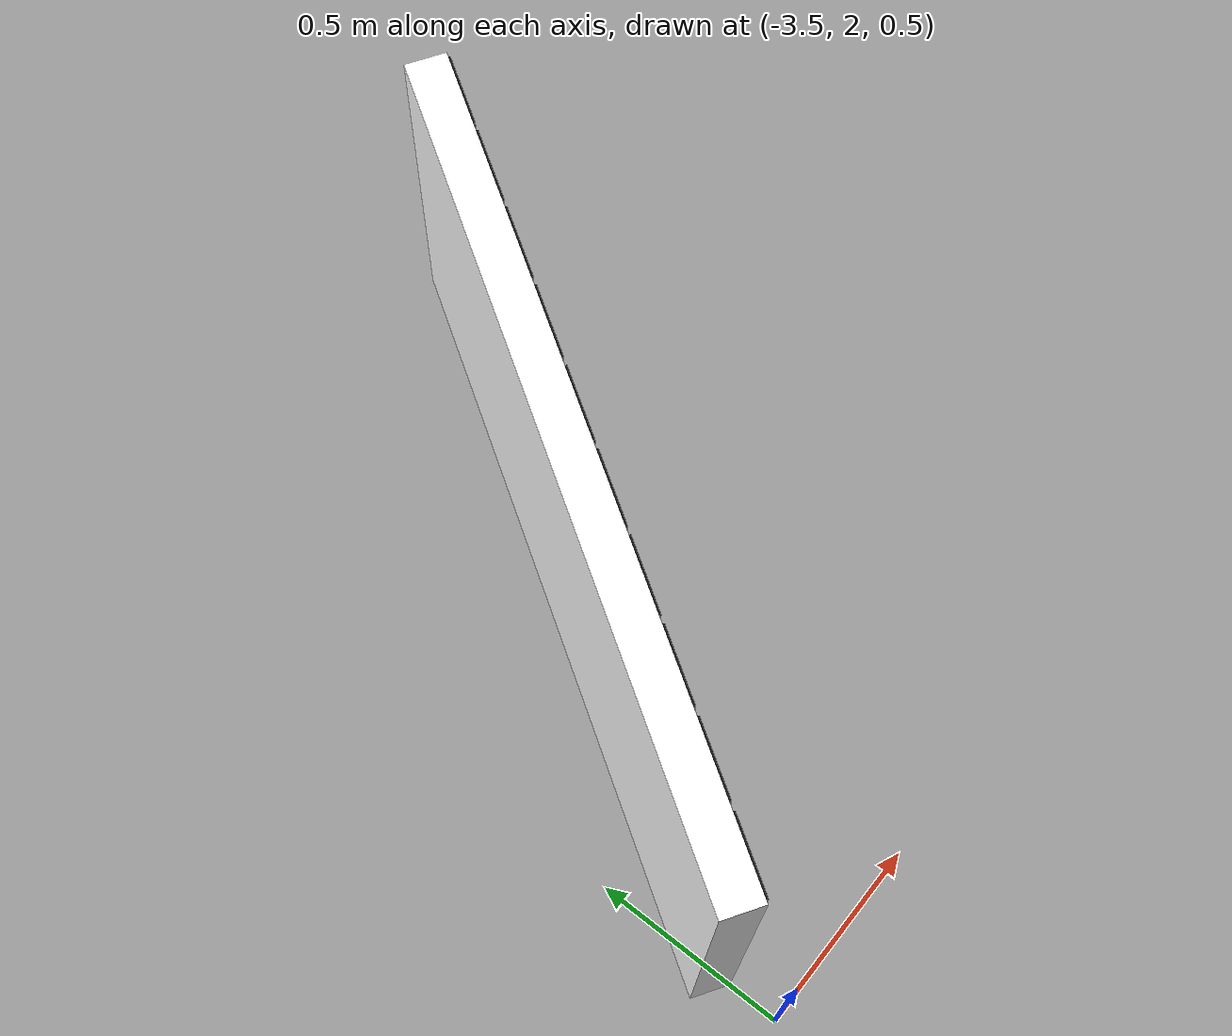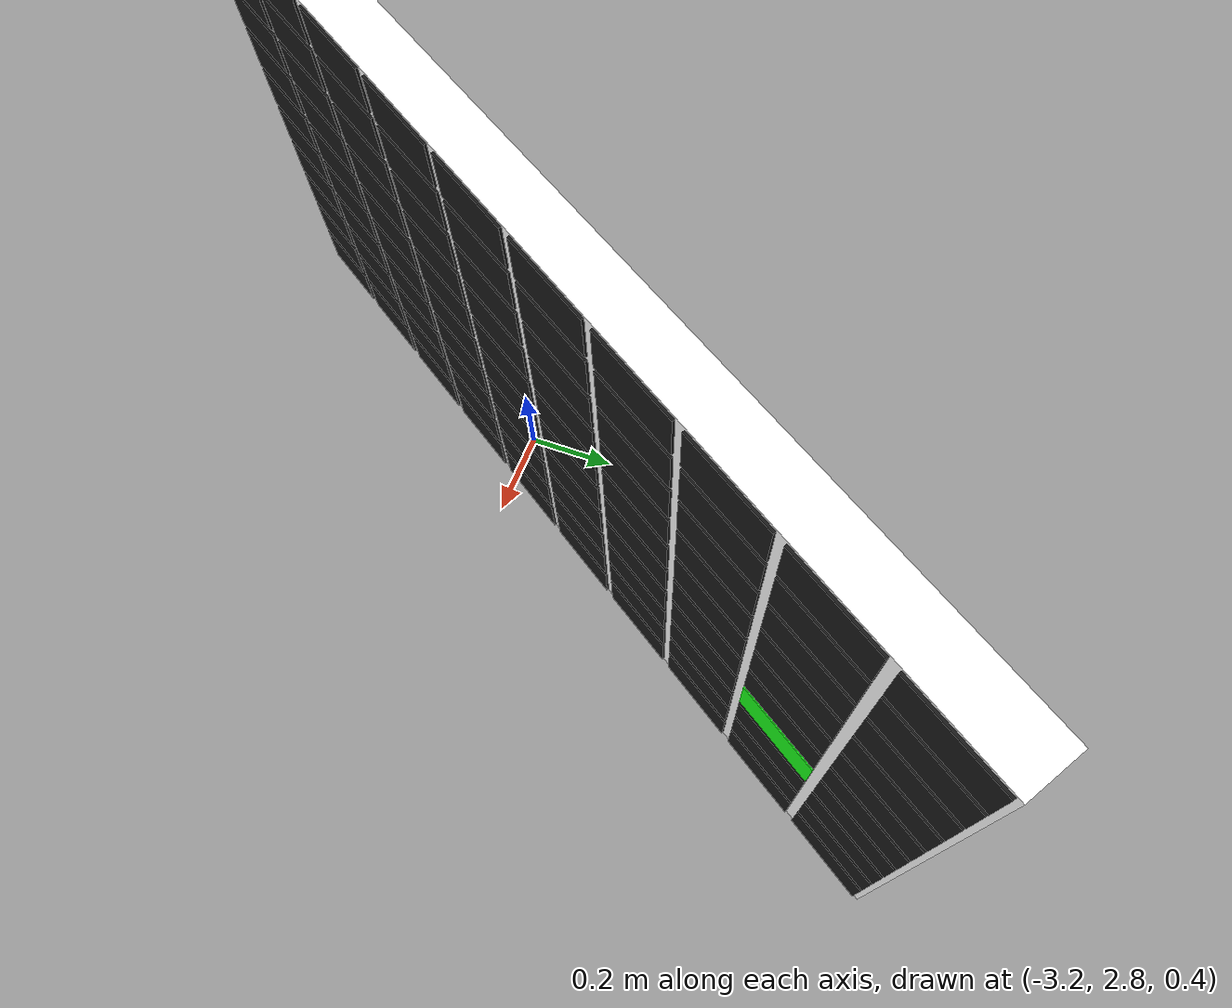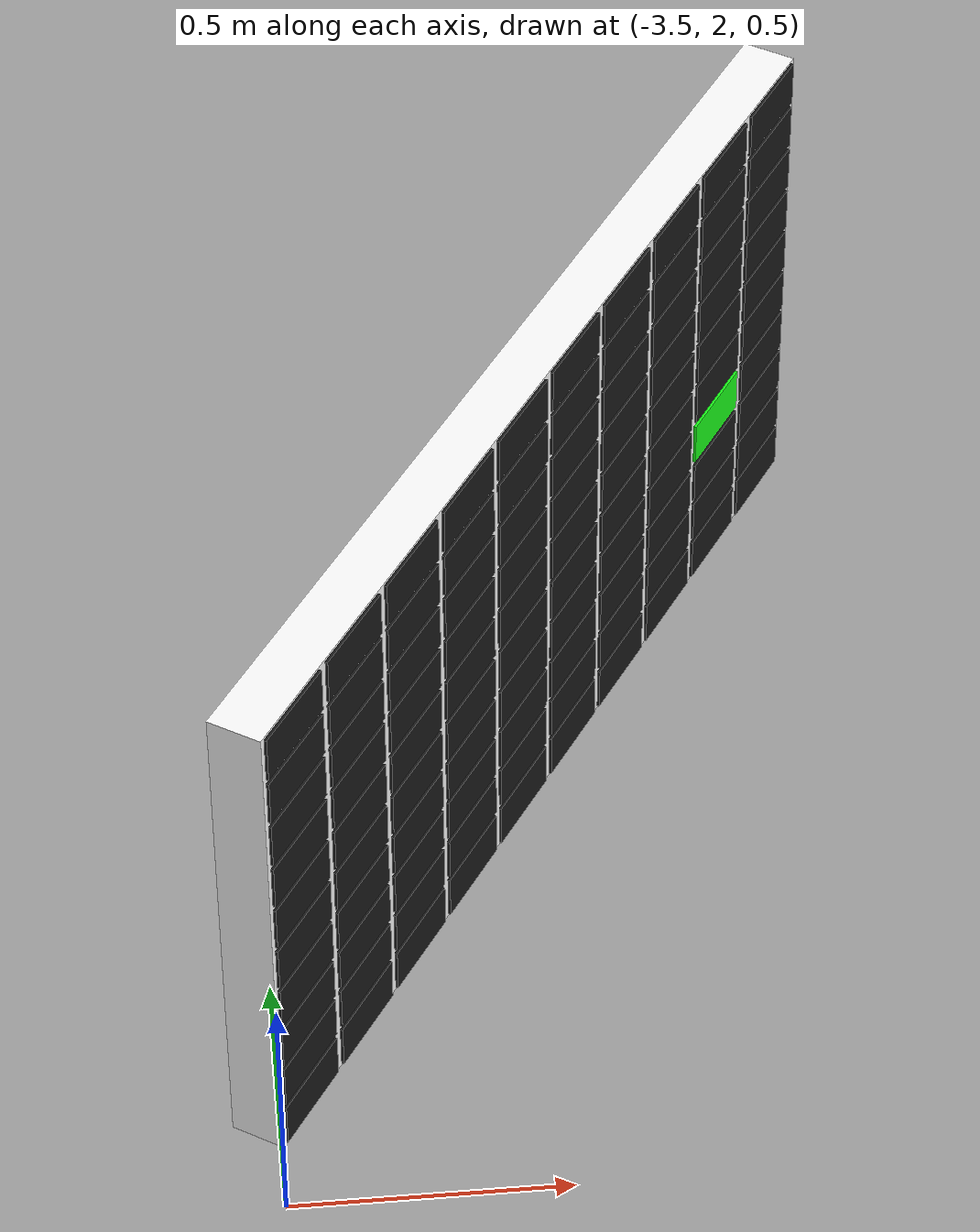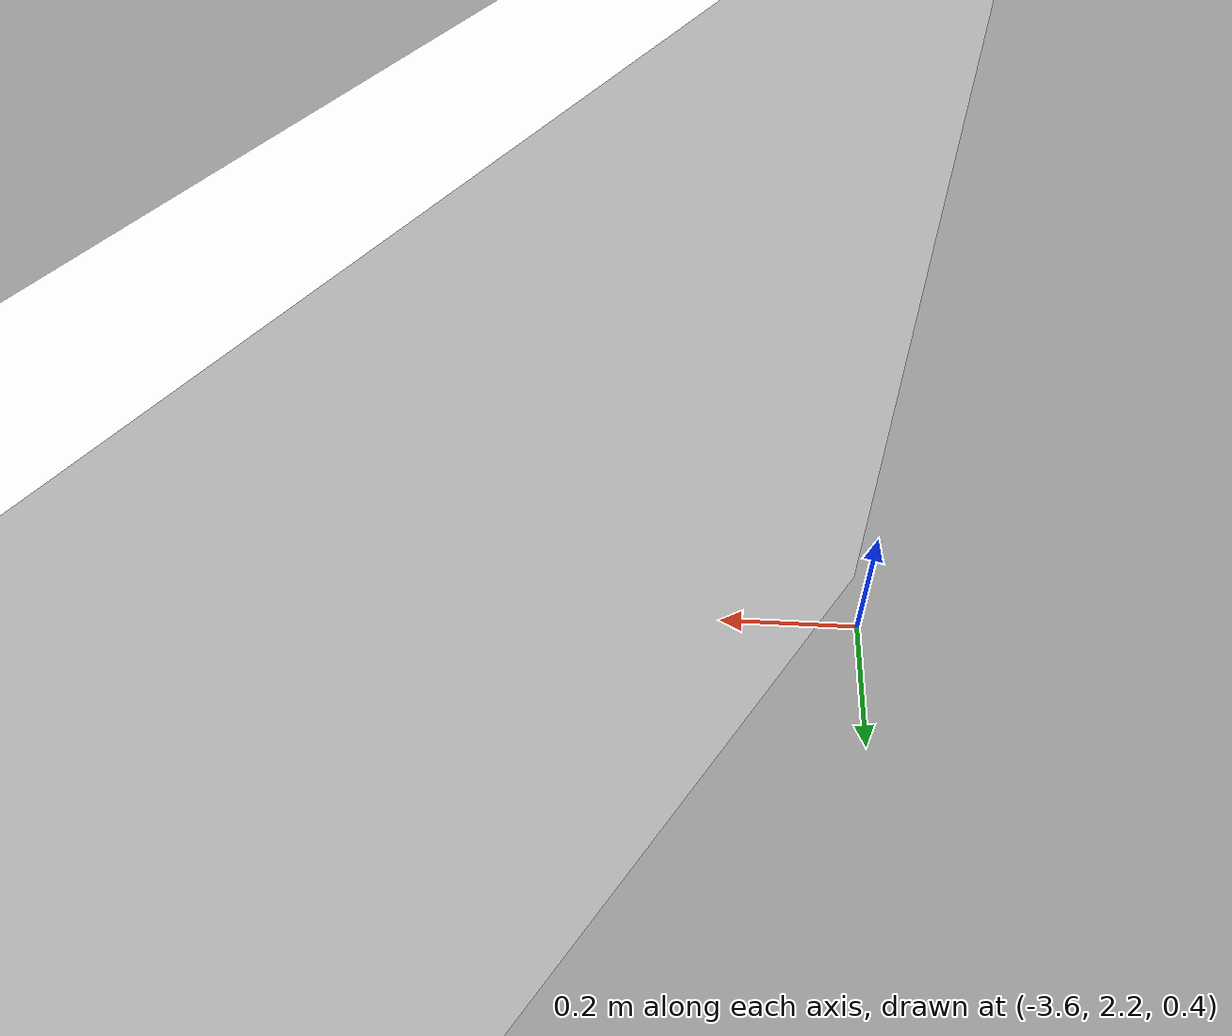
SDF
<sdf version="1.9">
 <world name="forest_with_panels">
  <model name="panel_2">
   <pose>-3 3 1 -0.57 -1.57 3.14</pose>
   <static>true</static>
   <link name="panel_outline">
    <visual name="panel_outline_visual">
     <geometry><box><size>1.0 2.0 0.1</size></box></geometry>
     <material>
      <ambient>1.0 1.0 1.0 1</ambient>
      <diffuse>1.0 1.0 1.0 1</diffuse>
      <specular>1.0 1.0 1.0 1</specular>
      <emissive>0 0 0 0</emissive>
     </material>
    </visual>
   </link>
   <link name="block_1_1">
    <visual name="block_1_1_visual">
     <pose>0.45 0.9 0.05 0 0 0</pose>
     <geometry><box><size>0.09 0.18 0.01</size></box></geometry>
     <material>
      <ambient>0.0 0.0 0.0 1</ambient>
      <diffuse>0.1 0.1 0.1 1</diffuse>
      <specular>0.1 0.1 0.1 1</specular>
      <emissive>0 0 0 0</emissive>
     </material>
    </visual>
   </link>
   <link name="block_2_1">
    <visual name="block_2_1_visual">
     <pose>0.35 0.9 0.05 0 0 0</pose>
     <geometry><box><size>0.09 0.18 0.01</size></box></geometry>
     <material>
      <ambient>0.0 0.0 0.0 1</ambient>
      <diffuse>0.1 0.1 0.1 1</diffuse>
      <specular>0.1 0.1 0.1 1</specular>
      <emissive>0 0 0 0</emissive>
     </material>
    </visual>
   </link>
   <link name="block_3_1">
    <visual name="block_3_1_visual">
     <pose>0.25 0.9 0.05 0 0 0</pose>
     <geometry><box><size>0.09 0.18 0.01</size></box></geometry>
     <material>
      <ambient>0.0 0.0 0.0 1</ambient>
      <diffuse>0.1 0.1 0.1 1</diffuse>
      <specular>0.1 0.1 0.1 1</specular>
      <emissive>0 0 0 0</emissive>
     </material>
    </visual>
   </link>
   <link name="block_4_1">
    <visual name="block_4_1_visual">
     <pose>0.15 0.9 0.05 0 0 0</pose>
     <geometry><box><size>0.09 0.18 0.01</size></box></geometry>
     <material>
      <ambient>0.0 0.0 0.0 1</ambient>
      <diffuse>0.1 0.1 0.1 1</diffuse>
      <specular>0.1 0.1 0.1 1</specular>
      <emissive>0 0 0 0</emissive>
     </material>
    </visual>
   </link>
   <link name="block_5_1">
    <visual name="block_5_1_visual">
     <pose>0.05 0.9 0.05 0 0 0</pose>
     <geometry><box><size>0.09 0.18 0.01</size></box></geometry>
     <material>
      <ambient>0.0 0.0 0.0 1</ambient>
      <diffuse>0.1 0.1 0.1 1</diffuse>
      <specular>0.1 0.1 0.1 1</specular>
      <emissive>0 0 0 0</emissive>
     </material>
    </visual>
   </link>
   <link name="block_6_1">
    <visual name="block_6_1_visual">
     <pose>-0.05 0.9 0.05 0 0 0</pose>
     <geometry><box><size>0.09 0.18 0.01</size></box></geometry>
     <material>
      <ambient>0.0 0.0 0.0 1</ambient>
      <diffuse>0.1 0.1 0.1 1</diffuse>
      <specular>0.1 0.1 0.1 1</specular>
      <emissive>0 0 0 0</emissive>
     </material>
    </visual>
   </link>
   <link name="block_7_1">
    <visual name="block_7_1_visual">
     <pose>-0.15 0.9 0.05 0 0 0</pose>
     <geometry><box><size>0.09 0.18 0.01</size></box></geometry>
     <material>
      <ambient>0.0 0.0 0.0 1</ambient>
      <diffuse>0.1 0.1 0.1 1</diffuse>
      <specular>0.1 0.1 0.1 1</specular>
      <emissive>0 0 0 0</emissive>
     </material>
    </visual>
   </link>
   <link name="block_8_1">
    <visual name="block_8_1_visual">
     <pose>-0.25 0.9 0.05 0 0 0</pose>
     <geometry><box><size>0.09 0.18 0.01</size></box></geometry>
     <material>
      <ambient>0.0 0.0 0.0 1</ambient>
      <diffuse>0.1 0.1 0.1 1</diffuse>
      <specular>0.1 0.1 0.1 1</specular>
      <emissive>0 0 0 0</emissive>
     </material>
    </visual>
   </link>
   <link name="block_9_1">
    <visual name="block_9_1_visual">
     <pose>-0.35 0.9 0.05 0 0 0</pose>
     <geometry><box><size>0.09 0.18 0.01</size></box></geometry>
     <material>
      <ambient>0.0 0.0 0.0 1</ambient>
      <diffuse>0.1 0.1 0.1 1</diffuse>
      <specular>0.1 0.1 0.1 1</specular>
      <emissive>0 0 0 0</emissive>
     </material>
    </visual>
   </link>
   <link name="block_10_1">
    <visual name="block_10_1_visual">
     <pose>-0.45 0.9 0.05 0 0 0</pose>
     <geometry><box><size>0.09 0.18 0.01</size></box></geometry>
     <material>
      <ambient>0.0 0.0 0.0 1</ambient>
      <diffuse>0.1 0.1 0.1 1</diffuse>
      <specular>0.1 0.1 0.1 1</specular>
      <emissive>0 0 0 0</emissive>
     </material>
    </visual>
   </link>
   <link name="block_1_2">
    <visual name="block_1_2_visual">
     <pose>0.45 0.7 0.05 0 0 0</pose>
     <geometry><box><size>0.09 0.18 0.01</size></box></geometry>
     <material>
      <ambient>0.0 0.0 0.0 1</ambient>
      <diffuse>0.1 0.1 0.1 1</diffuse>
      <specular>0.1 0.1 0.1 1</specular>
      <emissive>0 0 0 0</emissive>
     </material>
    </visual>
   </link>
   <link name="block_2_2">
    <visual name="block_2_2_visual">
     <pose>0.35 0.7 0.05 0 0 0</pose>
     <geometry><box><size>0.09 0.18 0.01</size></box></geometry>
     <material>
      <ambient>0.0 0.0 0.0 1</ambient>
      <diffuse>0.1 0.1 0.1 1</diffuse>
      <specular>0.1 0.1 0.1 1</specular>
      <emissive>0 0 0 0</emissive>
     </material>
    </visual>
   </link>
   <link name="block_3_2">
    <visual name="block_3_2_visual">
     <pose>0.25 0.7 0.05 0 0 0</pose>
     <geometry><box><size>0.09 0.18 0.01</size></box></geometry>
     <material>
      <ambient>0.0 0.0 0.0 1</ambient>
      <diffuse>0.1 0.1 0.1 1</diffuse>
      <specular>0.1 0.1 0.1 1</specular>
      <emissive>0 0 0 0</emissive>
     </material>
    </visual>
   </link>
   <link name="block_4_2">
    <visual name="block_4_2_visual">
     <pose>0.15 0.7 0.05 0 0 0</pose>
     <geometry><box><size>0.09 0.18 0.01</size></box></geometry>
     <material>
      <ambient>0.0 0.0 0.0 1</ambient>
      <diffuse>0.1 0.1 0.1 1</diffuse>
      <specular>0.1 0.1 0.1 1</specular>
      <emissive>0 0 0 0</emissive>
     </material>
    </visual>
   </link>
   <link name="block_5_2">
    <visual name="block_5_2_visual">
     <pose>0.05 0.7 0.05 0 0 0</pose>
     <geometry><box><size>0.09 0.18 0.01</size></box></geometry>
     <material>
      <ambient>0.0 0.0 0.0 1</ambient>
      <diffuse>0.1 0.1 0.1 1</diffuse>
      <specular>0.1 0.1 0.1 1</specular>
      <emissive>0 0 0 0</emissive>
     </material>
    </visual>
   </link>
   <link name="block_6_2">
    <visual name="block_6_2_visual">
     <pose>-0.05 0.7 0.05 0 0 0</pose>
     <geometry><box><size>0.09 0.18 0.01</size></box></geometry>
     <material>
      <ambient>0.0 0.0 0.0 1</ambient>
      <diffuse>0.1 0.1 0.1 1</diffuse>
      <specular>0.1 0.1 0.1 1</specular>
      <emissive>0 0 0 0</emissive>
     </material>
    </visual>
   </link>
   <link name="block_7_2">
    <visual name="block_7_2_visual">
     <pose>-0.15 0.7 0.05 0 0 0</pose>
     <geometry><box><size>0.09 0.18 0.01</size></box></geometry>
     <material>
      <ambient>0.0 0.0 0.0 1</ambient>
      <diffuse>0.1 0.1 0.1 1</diffuse>
      <specular>0.1 0.1 0.1 1</specular>
      <emissive>0 0 0 0</emissive>
     </material>
    </visual>
   </link>
   <link name="block_8_2">
    <visual name="block_8_2_visual">
     <pose>-0.25 0.7 0.05 0 0 0</pose>
     <geometry><box><size>0.09 0.18 0.01</size></box></geometry>
     <material>
      <ambient>0.0 0.0 0.0 1</ambient>
      <diffuse>0.1 0.1 0.1 1</diffuse>
      <specular>0.1 0.1 0.1 1</specular>
      <emissive>0 0 0 0</emissive>
     </material>
    </visual>
   </link>
   <link name="block_9_2">
    <visual name="block_9_2_visual">
     <pose>-0.35 0.7 0.05 0 0 0</pose>
     <geometry><box><size>0.09 0.18 0.01</size></box></geometry>
     <material>
      <ambient>0.0 0.0 0.0 1</ambient>
      <diffuse>0.1 0.1 0.1 1</diffuse>
      <specular>0.1 0.1 0.1 1</specular>
      <emissive>0 0 0 0</emissive>
     </material>
    </visual>
   </link>
   <link name="block_10_2">
    <visual name="block_10_2_visual">
     <pose>-0.45 0.7 0.05 0 0 0</pose>
     <geometry><box><size>0.09 0.18 0.01</size></box></geometry>
     <material>
      <ambient>0.0 0.0 0.0 1</ambient>
      <diffuse>0.1 0.1 0.1 1</diffuse>
      <specular>0.1 0.1 0.1 1</specular>
      <emissive>0 0 0 0</emissive>
     </material>
    </visual>
   </link>
   <link name="block_1_3">
    <visual name="block_1_3_visual">
     <pose>0.45 0.5 0.05 0 0 0</pose>
     <geometry><box><size>0.09 0.18 0.01</size></box></geometry>
     <material>
      <ambient>0.0 0.0 0.0 1</ambient>
      <diffuse>0.1 0.1 0.1 1</diffuse>
      <specular>0.1 0.1 0.1 1</specular>
      <emissive>0 0 0 0</emissive>
     </material>
    </visual>
   </link>
   <link name="block_2_3">
    <visual name="block_2_3_visual">
     <pose>0.35 0.5 0.05 0 0 0</pose>
     <geometry><box><size>0.09 0.18 0.01</size></box></geometry>
     <material>
      <ambient>0.0 0.0 0.0 1</ambient>
      <diffuse>0.1 0.1 0.1 1</diffuse>
      <specular>0.1 0.1 0.1 1</specular>
      <emissive>0 0 0 0</emissive>
     </material>
    </visual>
   </link>
   <link name="block_3_3">
    <visual name="block_3_3_visual">
     <pose>0.25 0.5 0.05 0 0 0</pose>
     <geometry><box><size>0.09 0.18 0.01</size></box></geometry>
     <material>
      <ambient>0.0 0.0 0.0 1</ambient>
      <diffuse>0.1 0.1 0.1 1</diffuse>
      <specular>0.1 0.1 0.1 1</specular>
      <emissive>0 0 0 0</emissive>
     </material>
    </visual>
   </link>
   <link name="block_4_3">
    <visual name="block_4_3_visual">
     <pose>0.15 0.5 0.05 0 0 0</pose>
     <geometry><box><size>0.09 0.18 0.01</size></box></geometry>
     <material>
      <ambient>0.0 0.0 0.0 1</ambient>
      <diffuse>0.1 0.1 0.1 1</diffuse>
      <specular>0.1 0.1 0.1 1</specular>
      <emissive>0 0 0 0</emissive>
     </material>
    </visual>
   </link>
   <link name="block_5_3">
    <visual name="block_5_3_visual">
     <pose>0.05 0.5 0.05 0 0 0</pose>
     <geometry><box><size>0.09 0.18 0.01</size></box></geometry>
     <material>
      <ambient>0.0 0.0 0.0 1</ambient>
      <diffuse>0.1 0.1 0.1 1</diffuse>
      <specular>0.1 0.1 0.1 1</specular>
      <emissive>0 0 0 0</emissive>
     </material>
    </visual>
   </link>
   <link name="block_6_3">
    <visual name="block_6_3_visual">
     <pose>-0.05 0.5 0.05 0 0 0</pose>
     <geometry><box><size>0.09 0.18 0.01</size></box></geometry>
     <material>
      <ambient>0.0 0.0 0.0 1</ambient>
      <diffuse>0.1 0.1 0.1 1</diffuse>
      <specular>0.1 0.1 0.1 1</specular>
      <emissive>0 0 0 0</emissive>
     </material>
    </visual>
   </link>
   <link name="block_7_3">
    <visual name="block_7_3_visual">
     <pose>-0.15 0.5 0.05 0 0 0</pose>
     <geometry><box><size>0.09 0.18 0.01</size></box></geometry>
     <material>
      <ambient>0.0 0.0 0.0 1</ambient>
      <diffuse>0.1 0.1 0.1 1</diffuse>
      <specular>0.1 0.1 0.1 1</specular>
      <emissive>0 0 0 0</emissive>
     </material>
    </visual>
   </link>
   <link name="block_8_3">
    <visual name="block_8_3_visual">
     <pose>-0.25 0.5 0.05 0 0 0</pose>
     <geometry><box><size>0.09 0.18 0.01</size></box></geometry>
     <material>
      <ambient>0.0 0.0 0.0 1</ambient>
      <diffuse>0.1 0.1 0.1 1</diffuse>
      <specular>0.1 0.1 0.1 1</specular>
      <emissive>0 0 0 0</emissive>
     </material>
    </visual>
   </link>
   <link name="block_9_3">
    <visual name="block_9_3_visual">
     <pose>-0.35 0.5 0.05 0 0 0</pose>
     <geometry><box><size>0.09 0.18 0.01</size></box></geometry>
     <material>
      <ambient>0.0 0.0 0.0 1</ambient>
      <diffuse>0.1 0.1 0.1 1</diffuse>
      <specular>0.1 0.1 0.1 1</specular>
      <emissive>0 0 0 0</emissive>
     </material>
    </visual>
   </link>
   <link name="block_10_3">
    <visual name="block_10_3_visual">
     <pose>-0.45 0.5 0.05 0 0 0</pose>
     <geometry><box><size>0.09 0.18 0.01</size></box></geometry>
     <material>
      <ambient>0.0 0.0 0.0 1</ambient>
      <diffuse>0.1 0.1 0.1 1</diffuse>
      <specular>0.1 0.1 0.1 1</specular>
      <emissive>0 0 0 0</emissive>
     </material>
    </visual>
   </link>
   <link name="block_1_4">
    <visual name="block_1_4_visual">
     <pose>0.45 0.3 0.05 0 0 0</pose>
     <geometry><box><size>0.09 0.18 0.01</size></box></geometry>
     <material>
      <ambient>0.0 0.0 0.0 1</ambient>
      <diffuse>0.1 0.1 0.1 1</diffuse>
      <specular>0.1 0.1 0.1 1</specular>
      <emissive>0 0 0 0</emissive>
     </material>
    </visual>
   </link>
   <link name="block_2_4">
    <visual name="block_2_4_visual">
     <pose>0.35 0.3 0.05 0 0 0</pose>
     <geometry><box><size>0.09 0.18 0.01</size></box></geometry>
     <material>
      <ambient>0.0 0.0 0.0 1</ambient>
      <diffuse>0.1 0.1 0.1 1</diffuse>
      <specular>0.1 0.1 0.1 1</specular>
      <emissive>0 0 0 0</emissive>
     </material>
    </visual>
   </link>
   <link name="block_3_4">
    <visual name="block_3_4_visual">
     <pose>0.25 0.3 0.05 0 0 0</pose>
     <geometry><box><size>0.09 0.18 0.01</size></box></geometry>
     <material>
      <ambient>0.0 0.0 0.0 1</ambient>
      <diffuse>0.1 0.1 0.1 1</diffuse>
      <specular>0.1 0.1 0.1 1</specular>
      <emissive>0 0 0 0</emissive>
     </material>
    </visual>
   </link>
   <link name="block_4_4">
    <visual name="block_4_4_visual">
     <pose>0.15 0.3 0.05 0 0 0</pose>
     <geometry><box><size>0.09 0.18 0.01</size></box></geometry>
     <material>
      <ambient>0.0 0.0 0.0 1</ambient>
      <diffuse>0.1 0.1 0.1 1</diffuse>
      <specular>0.1 0.1 0.1 1</specular>
      <emissive>0 0 0 0</emissive>
     </material>
    </visual>
   </link>
   <link name="block_5_4">
    <visual name="block_5_4_visual">
     <pose>0.05 0.3 0.05 0 0 0</pose>
     <geometry><box><size>0.09 0.18 0.01</size></box></geometry>
     <material>
      <ambient>0.0 0.0 0.0 1</ambient>
      <diffuse>0.1 0.1 0.1 1</diffuse>
      <specular>0.1 0.1 0.1 1</specular>
      <emissive>0 0 0 0</emissive>
     </material>
    </visual>
   </link>
   <link name="block_6_4">
    <visual name="block_6_4_visual">
     <pose>-0.05 0.3 0.05 0 0 0</pose>
     <geometry><box><size>0.09 0.18 0.01</size></box></geometry>
     <material>
      <ambient>0.0 0.0 0.0 1</ambient>
      <diffuse>0.1 0.1 0.1 1</diffuse>
      <specular>0.1 0.1 0.1 1</specular>
      <emissive>0 0 0 0</emissive>
     </material>
    </visual>
   </link>
   <link name="block_7_4">
    <visual name="block_7_4_visual">
     <pose>-0.15 0.3 0.05 0 0 0</pose>
     <geometry><box><size>0.09 0.18 0.01</size></box></geometry>
     <material>
      <ambient>0.0 0.0 0.0 1</ambient>
      <diffuse>0.1 0.1 0.1 1</diffuse>
      <specular>0.1 0.1 0.1 1</specular>
      <emissive>0 0 0 0</emissive>
     </material>
    </visual>
   </link>
   <link name="block_8_4">
    <visual name="block_8_4_visual">
     <pose>-0.25 0.3 0.05 0 0 0</pose>
     <geometry><box><size>0.09 0.18 0.01</size></box></geometry>
     <material>
      <ambient>0.0 0.0 0.0 1</ambient>
      <diffuse>0.1 0.1 0.1 1</diffuse>
      <specular>0.1 0.1 0.1 1</specular>
      <emissive>0 0 0 0</emissive>
     </material>
    </visual>
   </link>
   <link name="block_9_4">
    <visual name="block_9_4_visual">
     <pose>-0.35 0.3 0.05 0 0 0</pose>
     <geometry><box><size>0.09 0.18 0.01</size></box></geometry>
     <material>
      <ambient>0.0 0.0 0.0 1</ambient>
      <diffuse>0.1 0.1 0.1 1</diffuse>
      <specular>0.1 0.1 0.1 1</specular>
      <emissive>0 0 0 0</emissive>
     </material>
    </visual>
   </link>
   <link name="block_10_4">
    <visual name="block_10_2_visual">
     <pose>-0.45 0.3 0.05 0 0 0</pose>
     <geometry><box><size>0.09 0.18 0.01</size></box></geometry>
     <material>
      <ambient>0.0 0.0 0.0 1</ambient>
      <diffuse>0.1 0.1 0.1 1</diffuse>
      <specular>0.1 0.1 0.1 1</specular>
      <emissive>0 0 0 0</emissive>
     </material>
    </visual>
   </link>
   <link name="block_1_5">
    <visual name="block_1_5_visual">
     <pose>0.45 0.1 0.05 0 0 0</pose>
     <geometry><box><size>0.09 0.18 0.01</size></box></geometry>
     <material>
      <ambient>0.0 0.0 0.0 1</ambient>
      <diffuse>0.1 0.1 0.1 1</diffuse>
      <specular>0.1 0.1 0.1 1</specular>
      <emissive>0 0 0 0</emissive>
     </material>
    </visual>
   </link>
   <link name="block_2_5">
    <visual name="block_2_5_visual">
     <pose>0.35 0.1 0.05 0 0 0</pose>
     <geometry><box><size>0.09 0.18 0.01</size></box></geometry>
     <material>
      <ambient>0.0 0.0 0.0 1</ambient>
      <diffuse>0.1 0.1 0.1 1</diffuse>
      <specular>0.1 0.1 0.1 1</specular>
      <emissive>0 0 0 0</emissive>
     </material>
    </visual>
   </link>
   <link name="block_3_5">
    <visual name="block_3_5_visual">
     <pose>0.25 0.1 0.05 0 0 0</pose>
     <geometry><box><size>0.09 0.18 0.01</size></box></geometry>
     <material>
      <ambient>0.0 0.0 0.0 1</ambient>
      <diffuse>0.1 0.1 0.1 1</diffuse>
      <specular>0.1 0.1 0.1 1</specular>
      <emissive>0 0 0 0</emissive>
     </material>
    </visual>
   </link>
   <link name="block_4_5">
    <visual name="block_4_5_visual">
     <pose>0.15 0.1 0.05 0 0 0</pose>
     <geometry><box><size>0.09 0.18 0.01</size></box></geometry>
     <material>
      <ambient>0.0 0.0 0.0 1</ambient>
      <diffuse>0.1 0.1 0.1 1</diffuse>
      <specular>0.1 0.1 0.1 1</specular>
      <emissive>0 0 0 0</emissive>
     </material>
    </visual>
   </link>
   <link name="block_5_5">
    <visual name="block_5_5_visual">
     <pose>0.05 0.1 0.05 0 0 0</pose>
     <geometry><box><size>0.09 0.18 0.01</size></box></geometry>
     <material>
      <ambient>0.0 0.0 0.0 1</ambient>
      <diffuse>0.1 0.1 0.1 1</diffuse>
      <specular>0.1 0.1 0.1 1</specular>
      <emissive>0 0 0 0</emissive>
     </material>
    </visual>
   </link>
   <link name="block_6_5">
    <visual name="block_6_5_visual">
     <pose>-0.05 0.1 0.05 0 0 0</pose>
     <geometry><box><size>0.09 0.18 0.01</size></box></geometry>
     <material>
      <ambient>0.0 0.0 0.0 1</ambient>
      <diffuse>0.1 0.1 0.1 1</diffuse>
      <specular>0.1 0.1 0.1 1</specular>
      <emissive>0 0 0 0</emissive>
     </material>
    </visual>
   </link>
   <link name="block_7_5">
    <visual name="block_7_5_visual">
     <pose>-0.15 0.1 0.05 0 0 0</pose>
     <geometry><box><size>0.09 0.18 0.01</size></box></geometry>
     <material>
      <ambient>0.0 0.0 0.0 1</ambient>
      <diffuse>0.1 0.1 0.1 1</diffuse>
      <specular>0.1 0.1 0.1 1</specular>
      <emissive>0 0 0 0</emissive>
     </material>
    </visual>
   </link>
   <link name="block_8_5">
    <visual name="block_8_5_visual">
     <pose>-0.25 0.1 0.05 0 0 0</pose>
     <geometry><box><size>0.09 0.18 0.01</size></box></geometry>
     <material>
      <ambient>0.0 0.0 0.0 1</ambient>
      <diffuse>0.1 0.1 0.1 1</diffuse>
      <specular>0.1 0.1 0.1 1</specular>
      <emissive>0 0 0 0</emissive>
     </material>
    </visual>
   </link>
   <link name="block_9_5">
    <visual name="block_9_5_visual">
     <pose>-0.35 0.1 0.05 0 0 0</pose>
     <geometry><box><size>0.09 0.18 0.01</size></box></geometry>
     <material>
      <ambient>0.0 0.0 0.0 1</ambient>
      <diffuse>0.1 0.1 0.1 1</diffuse>
      <specular>0.1 0.1 0.1 1</specular>
      <emissive>0 0 0 0</emissive>
     </material>
    </visual>
   </link>
   <link name="block_10_5">
    <visual name="block_10_5_visual">
     <pose>-0.45 0.1 0.05 0 0 0</pose>
     <geometry><box><size>0.09 0.18 0.01</size></box></geometry>
     <material>
      <ambient>0.0 0.0 0.0 1</ambient>
      <diffuse>0.1 0.1 0.1 1</diffuse>
      <specular>0.1 0.1 0.1 1</specular>
      <emissive>0 0 0 0</emissive>
     </material>
    </visual>
   </link>
   <link name="block_1_6">
    <visual name="block_1_6_visual">
     <pose>0.45 -0.1 0.05 0 0 0</pose>
     <geometry><box><size>0.09 0.18 0.01</size></box></geometry>
     <material>
      <ambient>0.0 0.0 0.0 1</ambient>
      <diffuse>0.1 0.1 0.1 1</diffuse>
      <specular>0.1 0.1 0.1 1</specular>
      <emissive>0 0 0 0</emissive>
     </material>
    </visual>
   </link>
   <link name="block_2_6">
    <visual name="block_2_6_visual">
     <pose>0.35 -0.1 0.05 0 0 0</pose>
     <geometry><box><size>0.09 0.18 0.01</size></box></geometry>
     <material>
      <ambient>0.0 0.0 0.0 1</ambient>
      <diffuse>0.1 0.1 0.1 1</diffuse>
      <specular>0.1 0.1 0.1 1</specular>
      <emissive>0 0 0 0</emissive>
     </material>
    </visual>
   </link>
   <link name="block_3_6">
    <visual name="block_3_6_visual">
     <pose>0.25 -0.1 0.05 0 0 0</pose>
     <geometry><box><size>0.09 0.18 0.01</size></box></geometry>
     <material>
      <ambient>0.0 0.0 0.0 1</ambient>
      <diffuse>0.1 0.1 0.1 1</diffuse>
      <specular>0.1 0.1 0.1 1</specular>
      <emissive>0 0 0 0</emissive>
     </material>
    </visual>
   </link>
   <link name="block_4_6">
    <visual name="block_4_6_visual">
     <pose>0.15 -0.1 0.05 0 0 0</pose>
     <geometry><box><size>0.09 0.18 0.01</size></box></geometry>
     <material>
      <ambient>0.0 0.0 0.0 1</ambient>
      <diffuse>0.1 0.1 0.1 1</diffuse>
      <specular>0.1 0.1 0.1 1</specular>
      <emissive>0 0 0 0</emissive>
     </material>
    </visual>
   </link>
   <link name="block_5_6">
    <visual name="block_5_6_visual">
     <pose>0.05 -0.1 0.05 0 0 0</pose>
     <geometry><box><size>0.09 0.18 0.01</size></box></geometry>
     <material>
      <ambient>0.0 0.0 0.0 1</ambient>
      <diffuse>0.1 0.1 0.1 1</diffuse>
      <specular>0.1 0.1 0.1 1</specular>
      <emissive>0 0 0 0</emissive>
     </material>
    </visual>
   </link>
   <link name="block_6_6">
    <visual name="block_6_6_visual">
     <pose>-0.05 -0.1 0.05 0 0 0</pose>
     <geometry><box><size>0.09 0.18 0.01</size></box></geometry>
     <material>
      <ambient>0.0 0.0 0.0 1</ambient>
      <diffuse>0.1 0.1 0.1 1</diffuse>
      <specular>0.1 0.1 0.1 1</specular>
      <emissive>0 0 0 0</emissive>
     </material>
    </visual>
   </link>
   <link name="block_7_6">
    <visual name="block_7_6_visual">
     <pose>-0.15 -0.1 0.05 0 0 0</pose>
     <geometry><box><size>0.09 0.18 0.01</size></box></geometry>
     <material>
      <ambient>0.0 0.0 0.0 1</ambient>
      <diffuse>0.1 0.1 0.1 1</diffuse>
      <specular>0.1 0.1 0.1 1</specular>
      <emissive>0 0 0 0</emissive>
     </material>
    </visual>
   </link>
   <link name="block_8_6">
    <visual name="block_8_2_visual">
     <pose>-0.25 -0.1 0.05 0 0 0</pose>
     <geometry><box><size>0.09 0.18 0.01</size></box></geometry>
     <material>
      <ambient>0.0 0.0 0.0 1</ambient>
      <diffuse>0.1 0.1 0.1 1</diffuse>
      <specular>0.1 0.1 0.1 1</specular>
      <emissive>0 0 0 0</emissive>
     </material>
    </visual>
   </link>
   <link name="block_9_6">
    <visual name="block_9_2_visual">
     <pose>-0.35 -0.1 0.05 0 0 0</pose>
     <geometry><box><size>0.09 0.18 0.01</size></box></geometry>
     <material>
      <ambient>0.0 0.0 0.0 1</ambient>
      <diffuse>0.1 0.1 0.1 1</diffuse>
      <specular>0.1 0.1 0.1 1</specular>
      <emissive>0 0 0 0</emissive>
     </material>
    </visual>
   </link>
   <link name="block_10_6">
    <visual name="block_10_6_visual">
     <pose>-0.45 -0.1 0.05 0 0 0</pose>
     <geometry><box><size>0.09 0.18 0.01</size></box></geometry>
     <material>
      <ambient>0.0 0.0 0.0 1</ambient>
      <diffuse>0.1 0.1 0.1 1</diffuse>
      <specular>0.1 0.1 0.1 1</specular>
      <emissive>0 0 0 0</emissive>
     </material>
    </visual>
   </link>
   <link name="block_1_7">
    <visual name="block_1_7_visual">
     <pose>0.45 -0.3 0.05 0 0 0</pose>
     <geometry><box><size>0.09 0.18 0.01</size></box></geometry>
     <material>
      <ambient>0.0 0.0 0.0 1</ambient>
      <diffuse>0.1 0.1 0.1 1</diffuse>
      <specular>0.1 0.1 0.1 1</specular>
      <emissive>0 0 0 0</emissive>
     </material>
    </visual>
   </link>
   <link name="block_2_7">
    <visual name="block_2_7_visual">
     <pose>0.35 -0.3 0.05 0 0 0</pose>
     <geometry><box><size>0.09 0.18 0.01</size></box></geometry>
     <material>
      <ambient>0.0 0.0 0.0 1</ambient>
      <diffuse>0.1 0.1 0.1 1</diffuse>
      <specular>0.1 0.1 0.1 1</specular>
      <emissive>0 0 0 0</emissive>
     </material>
    </visual>
   </link>
   <link name="block_3_7">
    <visual name="block_3_7_visual">
     <pose>0.25 -0.3 0.05 0 0 0</pose>
     <geometry><box><size>0.09 0.18 0.01</size></box></geometry>
     <material>
      <ambient>0.0 0.0 0.0 1</ambient>
      <diffuse>0.1 0.1 0.1 1</diffuse>
      <specular>0.1 0.1 0.1 1</specular>
      <emissive>0 0 0 0</emissive>
     </material>
    </visual>
   </link>
   <link name="block_4_7">
    <visual name="block_4_7_visual">
     <pose>0.15 -0.3 0.05 0 0 0</pose>
     <geometry><box><size>0.09 0.18 0.01</size></box></geometry>
     <material>
      <ambient>0.0 0.0 0.0 1</ambient>
      <diffuse>0.1 0.1 0.1 1</diffuse>
      <specular>0.1 0.1 0.1 1</specular>
      <emissive>0 0 0 0</emissive>
     </material>
    </visual>
   </link>
   <link name="block_5_7">
    <visual name="block_5_7_visual">
     <pose>0.05 -0.3 0.05 0 0 0</pose>
     <geometry><box><size>0.09 0.18 0.01</size></box></geometry>
     <material>
      <ambient>0.0 0.0 0.0 1</ambient>
      <diffuse>0.1 0.1 0.1 1</diffuse>
      <specular>0.1 0.1 0.1 1</specular>
      <emissive>0 0 0 0</emissive>
     </material>
    </visual>
   </link>
   <link name="block_6_7">
    <visual name="block_6_7_visual">
     <pose>-0.05 -0.3 0.05 0 0 0</pose>
     <geometry><box><size>0.09 0.18 0.01</size></box></geometry>
     <material>
      <ambient>0.0 0.0 0.0 1</ambient>
      <diffuse>0.1 0.1 0.1 1</diffuse>
      <specular>0.1 0.1 0.1 1</specular>
      <emissive>0 0 0 0</emissive>
     </material>
    </visual>
   </link>
   <link name="block_7_7">
    <visual name="block_7_7_visual">
     <pose>-0.15 -0.3 0.05 0 0 0</pose>
     <geometry><box><size>0.09 0.18 0.01</size></box></geometry>
     <material>
      <ambient>0.0 0.0 0.0 1</ambient>
      <diffuse>0.1 0.1 0.1 1</diffuse>
      <specular>0.1 0.1 0.1 1</specular>
      <emissive>0 0 0 0</emissive>
     </material>
    </visual>
   </link>
   <link name="block_8_7">
    <visual name="block_8_7_visual">
     <pose>-0.25 -0.3 0.05 0 0 0</pose>
     <geometry><box><size>0.09 0.18 0.01</size></box></geometry>
     <material>
      <ambient>0.0 0.0 0.0 1</ambient>
      <diffuse>0.1 0.1 0.1 1</diffuse>
      <specular>0.1 0.1 0.1 1</specular>
      <emissive>0 0 0 0</emissive>
     </material>
    </visual>
   </link>
   <link name="block_9_7">
    <visual name="block_9_7_visual">
     <pose>-0.35 -0.3 0.05 0 0 0</pose>
     <geometry><box><size>0.09 0.18 0.01</size></box></geometry>
     <material>
      <ambient>0.0 0.0 0.0 1</ambient>
      <diffuse>0.1 0.1 0.1 1</diffuse>
      <specular>0.1 0.1 0.1 1</specular>
      <emissive>0 0 0 0</emissive>
     </material>
    </visual>
   </link>
   <link name="block_10_7">
    <visual name="block_10_7_visual">
     <pose>-0.45 -0.3 0.05 0 0 0</pose>
     <geometry><box><size>0.09 0.18 0.01</size></box></geometry>
     <material>
      <ambient>0.0 0.0 0.0 1</ambient>
      <diffuse>0.1 0.1 0.1 1</diffuse>
      <specular>0.1 0.1 0.1 1</specular>
      <emissive>0 0 0 0</emissive>
     </material>
    </visual>
   </link>
   <link name="block_1_8">
    <visual name="block_1_8_visual">
     <pose>0.45 -0.5 0.05 0 0 0</pose>
     <geometry><box><size>0.09 0.18 0.01</size></box></geometry>
     <material>
      <ambient>0.0 0.0 0.0 1</ambient>
      <diffuse>0.1 0.1 0.1 1</diffuse>
      <specular>0.1 0.1 0.1 1</specular>
      <emissive>0 0 0 0</emissive>
     </material>
    </visual>
   </link>
   <link name="block_2_8">
    <visual name="block_2_8_visual">
     <pose>0.35 -0.5 0.05 0 0 0</pose>
     <geometry><box><size>0.09 0.18 0.01</size></box></geometry>
     <material>
      <ambient>0.0 0.0 0.0 1</ambient>
      <diffuse>0.1 0.1 0.1 1</diffuse>
      <specular>0.1 0.1 0.1 1</specular>
      <emissive>0 0 0 0</emissive>
     </material>
    </visual>
   </link>
   <link name="block_3_8">
    <visual name="block_3_8_visual">
     <pose>0.25 -0.5 0.05 0 0 0</pose>
     <geometry><box><size>0.09 0.18 0.01</size></box></geometry>
     <material>
      <ambient>0.0 0.0 0.0 1</ambient>
      <diffuse>0.1 0.1 0.1 1</diffuse>
      <specular>0.1 0.1 0.1 1</specular>
      <emissive>0 0 0 0</emissive>
     </material>
    </visual>
   </link>
   <link name="block_4_8">
    <visual name="block_4_8_visual">
     <pose>0.15 -0.5 0.05 0 0 0</pose>
     <geometry><box><size>0.09 0.18 0.01</size></box></geometry>
     <material>
      <ambient>0.0 0.0 0.0 1</ambient>
      <diffuse>0.1 0.1 0.1 1</diffuse>
      <specular>0.1 0.1 0.1 1</specular>
      <emissive>0 0 0 0</emissive>
     </material>
    </visual>
   </link>
   <link name="block_5_8">
    <visual name="block_5_8_visual">
     <pose>0.05 -0.5 0.05 0 0 0</pose>
     <geometry><box><size>0.09 0.18 0.01</size></box></geometry>
     <material>
      <ambient>0.0 0.0 0.0 1</ambient>
      <diffuse>0.1 0.1 0.1 1</diffuse>
      <specular>0.1 0.1 0.1 1</specular>
      <emissive>0 0 0 0</emissive>
     </material>
    </visual>
   </link>
   <link name="block_6_8">
    <visual name="block_6_8_visual">
     <pose>-0.05 -0.5 0.05 0 0 0</pose>
     <geometry><box><size>0.09 0.18 0.01</size></box></geometry>
     <material>
      <ambient>0.0 0.0 0.0 1</ambient>
      <diffuse>0.1 0.1 0.1 1</diffuse>
      <specular>0.1 0.1 0.1 1</specular>
      <emissive>0 0 0 0</emissive>
     </material>
    </visual>
   </link>
   <link name="block_7_8">
    <visual name="block_7_8_visual">
     <pose>-0.15 -0.5 0.05 0 0 0</pose>
     <geometry><box><size>0.09 0.18 0.01</size></box></geometry>
     <material>
      <ambient>0.0 0.0 0.0 1</ambient>
      <diffuse>0.1 0.1 0.1 1</diffuse>
      <specular>0.1 0.1 0.1 1</specular>
      <emissive>0 0 0 0</emissive>
     </material>
    </visual>
   </link>
   <link name="block_8_8">
    <visual name="block_8_8_visual">
     <pose>-0.25 -0.5 0.05 0 0 0</pose>
     <geometry><box><size>0.09 0.18 0.01</size></box></geometry>
     <material>
      <ambient>0.0 0.0 0.0 1</ambient>
      <diffuse>0.1 0.1 0.1 1</diffuse>
      <specular>0.1 0.1 0.1 1</specular>
      <emissive>0 0 0 0</emissive>
     </material>
    </visual>
   </link>
   <link name="block_9_8">
    <visual name="block_9_8_visual">
     <pose>-0.35 -0.5 0.05 0 0 0</pose>
     <geometry><box><size>0.09 0.18 0.01</size></box></geometry>
     <material>
      <ambient>0.0 0.0 0.0 1</ambient>
      <diffuse>0.1 0.1 0.1 1</diffuse>
      <specular>0.1 0.1 0.1 1</specular>
      <emissive>0 0 0 0</emissive>
     </material>
    </visual>
   </link>
   <link name="block_10_8">
    <visual name="block_10_8_visual">
     <pose>-0.45 -0.5 0.05 0 0 0</pose>
     <geometry><box><size>0.09 0.18 0.01</size></box></geometry>
     <material>
      <ambient>0.0 0.0 0.0 1</ambient>
      <diffuse>0.1 0.1 0.1 1</diffuse>
      <specular>0.1 0.1 0.1 1</specular>
      <emissive>0 0 0 0</emissive>
     </material>
    </visual>
   </link>
   <link name="block_1_9">
    <visual name="block_1_9_visual">
     <pose>0.45 -0.7 0.05 0 0 0</pose>
     <geometry><box><size>0.09 0.18 0.01</size></box></geometry>
     <material>
      <ambient>0.0 0.0 0.0 1</ambient>
      <diffuse>0.1 0.1 0.1 1</diffuse>
      <specular>0.1 0.1 0.1 1</specular>
      <emissive>0 0 0 0</emissive>
     </material>
    </visual>
   </link>
   <link name="block_2_9">
    <visual name="block_2_9_visual">
     <pose>0.35 -0.7 0.05 0 0 0</pose>
     <geometry><box><size>0.09 0.18 0.01</size></box></geometry>
     <material>
      <ambient>0.0 0.0 0.0 1</ambient>
      <diffuse>0.1 0.1 0.1 1</diffuse>
      <specular>0.1 0.1 0.1 1</specular>
      <emissive>0 0 0 0</emissive>
     </material>
    </visual>
   </link>
   <link name="block_3_9">
    <visual name="block_3_9_visual">
     <pose>0.25 -0.7 0.05 0 0 0</pose>
     <geometry><box><size>0.09 0.18 0.01</size></box></geometry>
     <material>
      <ambient>0.0 0.0 0.0 1</ambient>
      <diffuse>0.1 0.1 0.1 1</diffuse>
      <specular>0.1 0.1 0.1 1</specular>
      <emissive>0 0 0 0</emissive>
     </material>
    </visual>
   </link>
   <link name="block_4_9">
    <visual name="block_4_9_visual">
     <pose>0.15 -0.7 0.05 0 0 0</pose>
     <geometry><box><size>0.09 0.18 0.01</size></box></geometry>
     <material>
      <ambient>0.0 0.0 0.0 1</ambient>
      <diffuse>0.1 0.1 0.1 1</diffuse>
      <specular>0.1 0.1 0.1 1</specular>
      <emissive>0 0 0 0</emissive>
     </material>
    </visual>
   </link>
   <link name="block_5_9">
    <visual name="block_5_9_visual">
     <pose>0.05 -0.7 0.05 0 0 0</pose>
     <geometry><box><size>0.09 0.18 0.01</size></box></geometry>
     <material>
      <ambient>0.0 0.0 0.0 1</ambient>
      <diffuse>0.1 0.1 0.1 1</diffuse>
      <specular>0.1 0.1 0.1 1</specular>
      <emissive>0 0 0 0</emissive>
     </material>
    </visual>
   </link>
   <link name="block_6_9">
    <visual name="block_6_9_visual">
     <pose>-0.05 -0.7 0.05 0 0 0</pose>
     <geometry><box><size>0.09 0.18 0.01</size></box></geometry>
     <material>
      <ambient>0.0 0.0 0.0 1</ambient>
      <diffuse>0.1 0.1 0.1 1</diffuse>
      <specular>0.1 0.1 0.1 1</specular>
      <emissive>0 0 0 0</emissive>
     </material>
    </visual>
   </link>
   <link name="block_7_9">
    <visual name="block_7_9_visual">
     <pose>-0.15 -0.7 0.05 0 0 0</pose>
     <geometry><box><size>0.09 0.18 0.01</size></box></geometry>
     <material>
      <ambient>0.0 1.0 0.0 1</ambient>
      <diffuse>0.1 1.0 0.1 1</diffuse>
      <specular>0.1 0.1 0.1 1</specular>
      <emissive>0 0 0 0</emissive>
     </material>
    </visual>
   </link>
   <link name="block_8_9">
    <visual name="block_8_9_visual">
     <pose>-0.25 -0.7 0.05 0 0 0</pose>
     <geometry><box><size>0.09 0.18 0.01</size></box></geometry>
     <material>
      <ambient>0.0 0.0 0.0 1</ambient>
      <diffuse>0.1 0.1 0.1 1</diffuse>
      <specular>0.1 0.1 0.1 1</specular>
      <emissive>0 0 0 0</emissive>
     </material>
    </visual>
   </link>
   <link name="block_9_9">
    <visual name="block_9_9_visual">
     <pose>-0.35 -0.7 0.05 0 0 0</pose>
     <geometry><box><size>0.09 0.18 0.01</size></box></geometry>
     <material>
      <ambient>0.0 0.0 0.0 1</ambient>
      <diffuse>0.1 0.1 0.1 1</diffuse>
      <specular>0.1 0.1 0.1 1</specular>
      <emissive>0 0 0 0</emissive>
     </material>
    </visual>
   </link>
   <link name="block_10_9">
    <visual name="block_10_9_visual">
     <pose>-0.45 -0.7 0.05 0 0 0</pose>
     <geometry><box><size>0.09 0.18 0.01</size></box></geometry>
     <material>
      <ambient>0.0 0.0 0.0 1</ambient>
      <diffuse>0.1 0.1 0.1 1</diffuse>
      <specular>0.1 0.1 0.1 1</specular>
      <emissive>0 0 0 0</emissive>
     </material>
    </visual>
   </link>
   <link name="block_1_10">
    <visual name="block_1_10_visual">
     <pose>0.45 -0.9 0.05 0 0 0</pose>
     <geometry><box><size>0.09 0.18 0.01</size></box></geometry>
     <material>
      <ambient>0.0 0.0 0.0 1</ambient>
      <diffuse>0.1 0.1 0.1 1</diffuse>
      <specular>0.1 0.1 0.1 1</specular>
      <emissive>0 0 0 0</emissive>
     </material>
    </visual>
   </link>
   <link name="block_2_10">
    <visual name="block_2_10_visual">
     <pose>0.35 -0.9 0.05 0 0 0</pose>
     <geometry><box><size>0.09 0.18 0.01</size></box></geometry>
     <material>
      <ambient>0.0 0.0 0.0 1</ambient>
      <diffuse>0.1 0.1 0.1 1</diffuse>
      <specular>0.1 0.1 0.1 1</specular>
      <emissive>0 0 0 0</emissive>
     </material>
    </visual>
   </link>
   <link name="block_3_10">
    <visual name="block_3_10_visual">
     <pose>0.25 -0.9 0.05 0 0 0</pose>
     <geometry><box><size>0.09 0.18 0.01</size></box></geometry>
     <material>
      <ambient>0.0 0.0 0.0 1</ambient>
      <diffuse>0.1 0.1 0.1 1</diffuse>
      <specular>0.1 0.1 0.1 1</specular>
      <emissive>0 0 0 0</emissive>
     </material>
    </visual>
   </link>
   <link name="block_4_10">
    <visual name="block_4_10_visual">
     <pose>0.15 -0.9 0.05 0 0 0</pose>
     <geometry><box><size>0.09 0.18 0.01</size></box></geometry>
     <material>
      <ambient>0.0 0.0 0.0 1</ambient>
      <diffuse>0.1 0.1 0.1 1</diffuse>
      <specular>0.1 0.1 0.1 1</specular>
      <emissive>0 0 0 0</emissive>
     </material>
    </visual>
   </link>
   <link name="block_5_10">
    <visual name="block_5_10_visual">
     <pose>0.05 -0.9 0.05 0 0 0</pose>
     <geometry><box><size>0.09 0.18 0.01</size></box></geometry>
     <material>
      <ambient>0.0 0.0 0.0 1</ambient>
      <diffuse>0.1 0.1 0.1 1</diffuse>
      <specular>0.1 0.1 0.1 1</specular>
      <emissive>0 0 0 0</emissive>
     </material>
    </visual>
   </link>
   <link name="block_6_10">
    <visual name="block_6_10_visual">
     <pose>-0.05 -0.9 0.05 0 0 0</pose>
     <geometry><box><size>0.09 0.18 0.01</size></box></geometry>
     <material>
      <ambient>0.0 0.0 0.0 1</ambient>
      <diffuse>0.1 0.1 0.1 1</diffuse>
      <specular>0.1 0.1 0.1 1</specular>
      <emissive>0 0 0 0</emissive>
     </material>
    </visual>
   </link>
   <link name="block_7_10">
    <visual name="block_7_10_visual">
     <pose>-0.15 -0.9 0.05 0 0 0</pose>
     <geometry><box><size>0.09 0.18 0.01</size></box></geometry>
     <material>
      <ambient>0.0 0.0 0.0 1</ambient>
      <diffuse>0.1 0.1 0.1 1</diffuse>
      <specular>0.1 0.1 0.1 1</specular>
      <emissive>0 0 0 0</emissive>
     </material>
    </visual>
   </link>
   <link name="block_8_10">
    <visual name="block_8_10_visual">
     <pose>-0.25 -0.9 0.05 0 0 0</pose>
     <geometry><box><size>0.09 0.18 0.01</size></box></geometry>
     <material>
      <ambient>0.0 0.0 0.0 1</ambient>
      <diffuse>0.1 0.1 0.1 1</diffuse>
      <specular>0.1 0.1 0.1 1</specular>
      <emissive>0 0 0 0</emissive>
     </material>
    </visual>
   </link>
   <link name="block_9_10">
    <visual name="block_9_10_visual">
     <pose>-0.35 -0.9 0.05 0 0 0</pose>
     <geometry><box><size>0.09 0.18 0.01</size></box></geometry>
     <material>
      <ambient>0.0 0.0 0.0 1</ambient>
      <diffuse>0.1 0.1 0.1 1</diffuse>
      <specular>0.1 0.1 0.1 1</specular>
      <emissive>0 0 0 0</emissive>
     </material>
    </visual>
   </link>
   <link name="block_10_10">
    <visual name="block_10_10_visual">
     <pose>-0.45 -0.9 0.05 0 0 0</pose>
     <geometry><box><size>0.09 0.18 0.01</size></box></geometry>
     <material>
      <ambient>0.0 0.0 0.0 1</ambient>
      <diffuse>0.1 0.1 0.1 1</diffuse>
      <specular>0.1 0.1 0.1 1</specular>
      <emissive>0 0 0 0</emissive>
     </material>
    </visual>
   </link>
  </model>
 </world>
</sdf>
